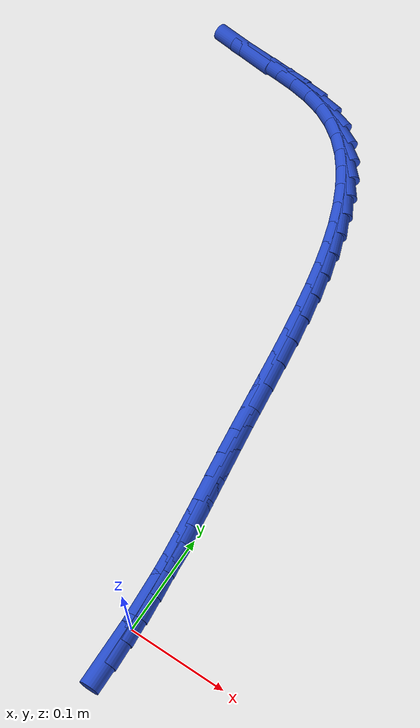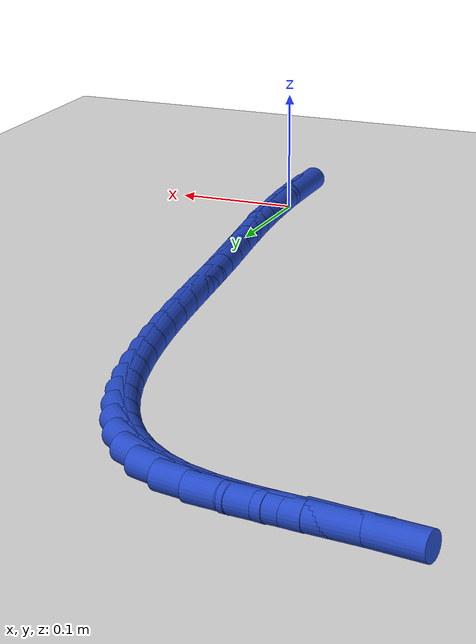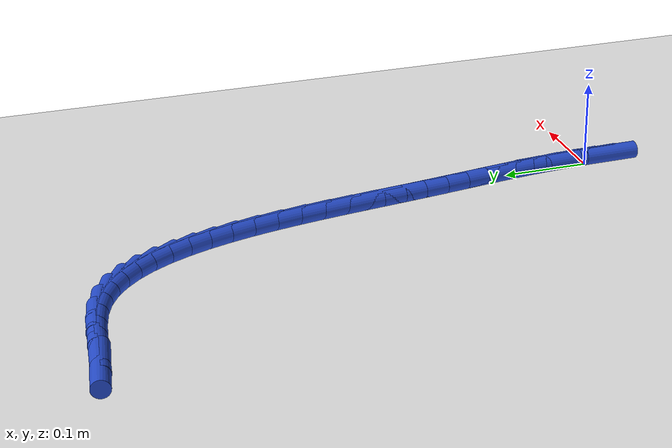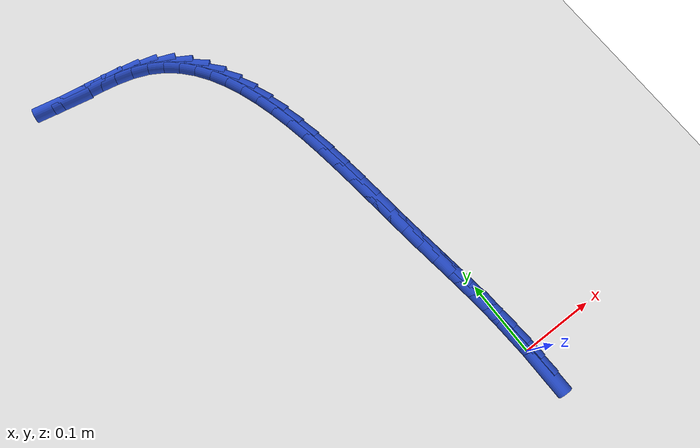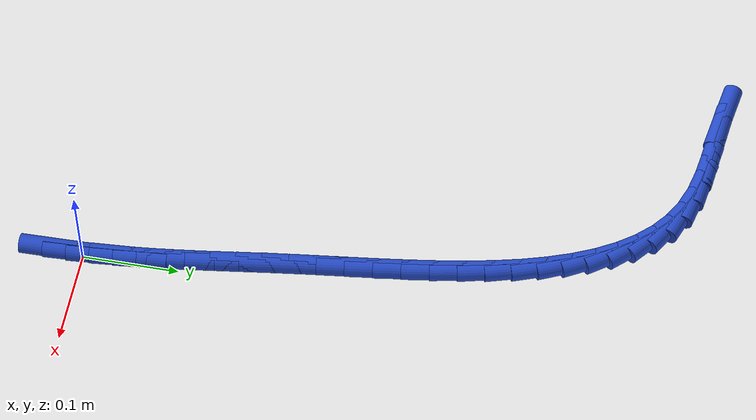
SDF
<sdf version="1.6">
 <world name="default">
  <model name="ground_plane">
   <static>1</static>
   <link name="link">
    <collision name="collision">
     <geometry><plane><normal>0 0 1</normal><size>100 100</size></plane></geometry>
     <surface><friction><ode><mu>100</mu><mu2>50</mu2></ode></friction></surface>
    </collision>
    <visual name="visual">
     <cast_shadows>0</cast_shadows>
     <geometry><plane><normal>0 0 1</normal><size>100 100</size></plane></geometry>
     <material>
      <script><uri>file://media/materials/scripts/gazebo.material</uri><name>Gazebo/WhiteGlow</name></script>
     </material>
    </visual>
   </link>
  </model>
  <model name="line">
   <link name="link_0">
    <pose>8.673617379884035e-19 -3.469446951953614e-17 0.01 0 1.57 -1.5240641853317218</pose>
    <collision name="collision">
     <geometry><cylinder><radius>0.01</radius><length>0.08</length></cylinder></geometry>
    </collision>
    <visual name="visual">
     <material>
      <script><name>Gazebo/Blue</name><uri>file://media/materials/scripts/gazebo.material</uri></script>
     </material>
     <geometry><cylinder><radius>0.01</radius><length>0.08</length></cylinder></geometry>
    </visual>
   </link>
   <link name="link_1">
    <pose>-0.0011370628850971864 0.02431378036060707 0.01 0 1.57 -1.4969305123686296</pose>
    <collision name="collision">
     <geometry><cylinder><radius>0.01</radius><length>0.08</length></cylinder></geometry>
    </collision>
    <visual name="visual">
     <material>
      <script><name>Gazebo/Blue</name><uri>file://media/materials/scripts/gazebo.material</uri></script>
     </material>
     <geometry><cylinder><radius>0.01</radius><length>0.08</length></cylinder></geometry>
    </visual>
   </link>
   <link name="link_2">
    <pose>-0.002921043157018145 0.04842147544550481 0.01 0 1.57 -1.4741336956507662</pose>
    <collision name="collision">
     <geometry><cylinder><radius>0.01</radius><length>0.08</length></cylinder></geometry>
    </collision>
    <visual name="visual">
     <material>
      <script><name>Gazebo/Blue</name><uri>file://media/materials/scripts/gazebo.material</uri></script>
     </material>
     <geometry><cylinder><radius>0.01</radius><length>0.08</length></cylinder></geometry>
    </visual>
   </link>
   <link name="link_3">
    <pose>-0.005251955962243914 0.07246022233203431 0.01 0 1.57 -1.456071559786414</pose>
    <collision name="collision">
     <geometry><cylinder><radius>0.01</radius><length>0.08</length></cylinder></geometry>
    </collision>
    <visual name="visual">
     <material>
      <script><name>Gazebo/Blue</name><uri>file://media/materials/scripts/gazebo.material</uri></script>
     </material>
     <geometry><cylinder><radius>0.01</radius><length>0.08</length></cylinder></geometry>
    </visual>
   </link>
   <link name="link_4">
    <pose>-0.008029816447255542 0.09656715809753673 0.01 0 1.57 -1.442968445503576</pose>
    <collision name="collision">
     <geometry><cylinder><radius>0.01</radius><length>0.08</length></cylinder></geometry>
    </collision>
    <visual name="visual">
     <material>
      <script><name>Gazebo/Blue</name><uri>file://media/materials/scripts/gazebo.material</uri></script>
     </material>
     <geometry><cylinder><radius>0.01</radius><length>0.08</length></cylinder></geometry>
    </visual>
   </link>
   <link name="link_5">
    <pose>-0.011154639758534073 0.12087941981935318 0.01 0 1.57 -1.4348786645264213</pose>
    <collision name="collision">
     <geometry><cylinder><radius>0.01</radius><length>0.08</length></cylinder></geometry>
    </collision>
    <visual name="visual">
     <material>
      <script><name>Gazebo/Blue</name><uri>file://media/materials/scripts/gazebo.material</uri></script>
     </material>
     <geometry><cylinder><radius>0.01</radius><length>0.08</length></cylinder></geometry>
    </visual>
   </link>
   <link name="link_6">
    <pose>-0.014526441042560555 0.14553414457482483 0.01 0 1.57 -1.4317008175939747</pose>
    <collision name="collision">
     <geometry><cylinder><radius>0.01</radius><length>0.08</length></cylinder></geometry>
    </collision>
    <visual name="visual">
     <material>
      <script><name>Gazebo/Blue</name><uri>file://media/materials/scripts/gazebo.material</uri></script>
     </material>
     <geometry><cylinder><radius>0.01</radius><length>0.08</length></cylinder></geometry>
    </visual>
   </link>
   <link name="link_7">
    <pose>-0.01804523544581602 0.17066846944129266 0.01 0 1.57 -1.433199264471176</pose>
    <collision name="collision">
     <geometry><cylinder><radius>0.01</radius><length>0.08</length></cylinder></geometry>
    </collision>
    <visual name="visual">
     <material>
      <script><name>Gazebo/Blue</name><uri>file://media/materials/scripts/gazebo.material</uri></script>
     </material>
     <geometry><cylinder><radius>0.01</radius><length>0.08</length></cylinder></geometry>
    </visual>
   </link>
   <link name="link_8">
    <pose>-0.02161103811478153 0.19641953149609803 0.01 0 1.57 -1.4390294683640523</pose>
    <collision name="collision">
     <geometry><cylinder><radius>0.01</radius><length>0.08</length></cylinder></geometry>
    </collision>
    <visual name="visual">
     <material>
      <script><name>Gazebo/Blue</name><uri>file://media/materials/scripts/gazebo.material</uri></script>
     </material>
     <geometry><cylinder><radius>0.01</radius><length>0.08</length></cylinder></geometry>
    </visual>
   </link>
   <link name="link_9">
    <pose>-0.02512386433749043 0.2229244676020097 0.01 0 1.57 -1.4468864666676833</pose>
    <collision name="collision">
     <geometry><cylinder><radius>0.01</radius><length>0.08</length></cylinder></geometry>
    </collision>
    <visual name="visual">
     <material>
      <script><name>Gazebo/Blue</name><uri>file://media/materials/scripts/gazebo.material</uri></script>
     </material>
     <geometry><cylinder><radius>0.01</radius><length>0.08</length></cylinder></geometry>
    </visual>
   </link>
   <link name="link_10">
    <pose>-0.028527676028604204 0.25025379809651976 0.01 0 1.57 -1.4495886288142459</pose>
    <collision name="collision">
     <geometry><cylinder><radius>0.01</radius><length>0.08</length></cylinder></geometry>
    </collision>
    <visual name="visual">
     <material>
      <script><name>Gazebo/Blue</name><uri>file://media/materials/scripts/gazebo.material</uri></script>
     </material>
     <geometry><cylinder><radius>0.01</radius><length>0.08</length></cylinder></geometry>
    </visual>
   </link>
   <link name="link_11">
    <pose>-0.03193449382158683 0.27822329138851665 0.01 0 1.57 -1.4458705437820714</pose>
    <collision name="collision">
     <geometry><cylinder><radius>0.01</radius><length>0.08</length></cylinder></geometry>
    </collision>
    <visual name="visual">
     <material>
      <script><name>Gazebo/Blue</name><uri>file://media/materials/scripts/gazebo.material</uri></script>
     </material>
     <geometry><cylinder><radius>0.01</radius><length>0.08</length></cylinder></geometry>
    </visual>
   </link>
   <link name="link_12">
    <pose>-0.03549650529441764 0.30658782879543484 0.01 0 1.57 -1.4359208763719873</pose>
    <collision name="collision">
     <geometry><cylinder><radius>0.01</radius><length>0.08</length></cylinder></geometry>
    </collision>
    <visual name="visual">
     <material>
      <script><name>Gazebo/Blue</name><uri>file://media/materials/scripts/gazebo.material</uri></script>
     </material>
     <geometry><cylinder><radius>0.01</radius><length>0.08</length></cylinder></geometry>
    </visual>
   </link>
   <link name="link_13">
    <pose>-0.03936589802507603 0.33510229163470856 0.01 0 1.57 -1.4196334460924684</pose>
    <collision name="collision">
     <geometry><cylinder><radius>0.01</radius><length>0.08</length></cylinder></geometry>
    </collision>
    <visual name="visual">
     <material>
      <script><name>Gazebo/Blue</name><uri>file://media/materials/scripts/gazebo.material</uri></script>
     </material>
     <geometry><cylinder><radius>0.01</radius><length>0.08</length></cylinder></geometry>
    </visual>
   </link>
   <link name="link_14">
    <pose>-0.043694859591541325 0.3635215612237722 0.01 0 1.57 -1.3966212528681958</pose>
    <collision name="collision">
     <geometry><cylinder><radius>0.01</radius><length>0.08</length></cylinder></geometry>
    </collision>
    <visual name="visual">
     <material>
      <script><name>Gazebo/Blue</name><uri>file://media/materials/scripts/gazebo.material</uri></script>
     </material>
     <geometry><cylinder><radius>0.01</radius><length>0.08</length></cylinder></geometry>
    </visual>
   </link>
   <link name="link_15">
    <pose>-0.04863557757179294 0.3916005188800602 0.01 0 1.57 -1.3662082787203482</pose>
    <collision name="collision">
     <geometry><cylinder><radius>0.01</radius><length>0.08</length></cylinder></geometry>
    </collision>
    <visual name="visual">
     <material>
      <script><name>Gazebo/Blue</name><uri>file://media/materials/scripts/gazebo.material</uri></script>
     </material>
     <geometry><cylinder><radius>0.01</radius><length>0.08</length></cylinder></geometry>
    </visual>
   </link>
   <link name="link_16">
    <pose>-0.05434023954381022 0.41909404592100685 0.01 0 1.57 -1.327405013645648</pose>
    <collision name="collision">
     <geometry><cylinder><radius>0.01</radius><length>0.08</length></cylinder></geometry>
    </collision>
    <visual name="visual">
     <material>
      <script><name>Gazebo/Blue</name><uri>file://media/materials/scripts/gazebo.material</uri></script>
     </material>
     <geometry><cylinder><radius>0.01</radius><length>0.08</length></cylinder></geometry>
    </visual>
   </link>
   <link name="link_17">
    <pose>-0.06096103308557255 0.4457570236640466 0.01 0 1.57 -1.2788763596056034</pose>
    <collision name="collision">
     <geometry><cylinder><radius>0.01</radius><length>0.08</length></cylinder></geometry>
    </collision>
    <visual name="visual">
     <material>
      <script><name>Gazebo/Blue</name><uri>file://media/materials/scripts/gazebo.material</uri></script>
     </material>
     <geometry><cylinder><radius>0.01</radius><length>0.08</length></cylinder></geometry>
    </visual>
   </link>
   <link name="link_18">
    <pose>-0.06865014577505923 0.4713443334266137 0.01 0 1.57 -1.218919538011833</pose>
    <collision name="collision">
     <geometry><cylinder><radius>0.01</radius><length>0.08</length></cylinder></geometry>
    </collision>
    <visual name="visual">
     <material>
      <script><name>Gazebo/Blue</name><uri>file://media/materials/scripts/gazebo.material</uri></script>
     </material>
     <geometry><cylinder><radius>0.01</radius><length>0.08</length></cylinder></geometry>
    </visual>
   </link>
   <link name="link_19">
    <pose>-0.07755976519024974 0.4956108565261426 0.01 0 1.57 -1.1454893696384807</pose>
    <collision name="collision">
     <geometry><cylinder><radius>0.01</radius><length>0.08</length></cylinder></geometry>
    </collision>
    <visual name="visual">
     <material>
      <script><name>Gazebo/Blue</name><uri>file://media/materials/scripts/gazebo.material</uri></script>
     </material>
     <geometry><cylinder><radius>0.01</radius><length>0.08</length></cylinder></geometry>
    </visual>
   </link>
   <link name="link_20">
    <pose>-0.08784207890912335 0.5183114742800676 0.01 0 1.57 -1.0563437827675914</pose>
    <collision name="collision">
     <geometry><cylinder><radius>0.01</radius><length>0.08</length></cylinder></geometry>
    </collision>
    <visual name="visual">
     <material>
      <script><name>Gazebo/Blue</name><uri>file://media/materials/scripts/gazebo.material</uri></script>
     </material>
     <geometry><cylinder><radius>0.01</radius><length>0.08</length></cylinder></geometry>
    </visual>
   </link>
   <link name="link_21">
    <pose>-0.09964927450965946 0.5392010680058232 0.01 0 1.57 -0.949429680818018</pose>
    <collision name="collision">
     <geometry><cylinder><radius>0.01</radius><length>0.08</length></cylinder></geometry>
    </collision>
    <visual name="visual">
     <material>
      <script><name>Gazebo/Blue</name><uri>file://media/materials/scripts/gazebo.material</uri></script>
     </material>
     <geometry><cylinder><radius>0.01</radius><length>0.08</length></cylinder></geometry>
    </visual>
   </link>
   <link name="link_22">
    <pose>-0.11313353956983742 0.5580345190208432 0.01 0 1.57 -0.823647368579522</pose>
    <collision name="collision">
     <geometry><cylinder><radius>0.01</radius><length>0.08</length></cylinder></geometry>
    </collision>
    <visual name="visual">
     <material>
      <script><name>Gazebo/Blue</name><uri>file://media/materials/scripts/gazebo.material</uri></script>
     </material>
     <geometry><cylinder><radius>0.01</radius><length>0.08</length></cylinder></geometry>
    </visual>
   </link>
   <link name="link_23">
    <pose>-0.12844706166763664 0.5745667086425627 0.01 0 1.57 -0.6800013277637227</pose>
    <collision name="collision">
     <geometry><cylinder><radius>0.01</radius><length>0.08</length></cylinder></geometry>
    </collision>
    <visual name="visual">
     <material>
      <script><name>Gazebo/Blue</name><uri>file://media/materials/scripts/gazebo.material</uri></script>
     </material>
     <geometry><cylinder><radius>0.01</radius><length>0.08</length></cylinder></geometry>
    </visual>
   </link>
   <link name="link_24">
    <pose>-0.14574202838103645 0.5885525181884157 0.01 0 1.57 -0.5227183362739126</pose>
    <collision name="collision">
     <geometry><cylinder><radius>0.01</radius><length>0.08</length></cylinder></geometry>
    </collision>
    <visual name="visual">
     <material>
      <script><name>Gazebo/Blue</name><uri>file://media/materials/scripts/gazebo.material</uri></script>
     </material>
     <geometry><cylinder><radius>0.01</radius><length>0.08</length></cylinder></geometry>
    </visual>
   </link>
   <link name="link_25">
    <pose>-0.16517062728801626 0.5997468289758368 0.01 0 1.57 -0.3618012500604357</pose>
    <collision name="collision">
     <geometry><cylinder><radius>0.01</radius><length>0.08</length></cylinder></geometry>
    </collision>
    <visual name="visual">
     <material>
      <script><name>Gazebo/Blue</name><uri>file://media/materials/scripts/gazebo.material</uri></script>
     </material>
     <geometry><cylinder><radius>0.01</radius><length>0.08</length></cylinder></geometry>
    </visual>
   </link>
   <link name="link_26">
    <pose>-0.18685274004629196 0.6079526565183013 0.01 0 1.57 -0.23480176617950946</pose>
    <collision name="collision">
     <geometry><cylinder><radius>0.01</radius><length>0.08</length></cylinder></geometry>
    </collision>
    <visual name="visual">
     <material>
      <script><name>Gazebo/Blue</name><uri>file://media/materials/scripts/gazebo.material</uri></script>
     </material>
     <geometry><cylinder><radius>0.01</radius><length>0.08</length></cylinder></geometry>
    </visual>
   </link>
   <link name="link_27">
    <pose>-0.21048373252312055 0.6136055235017792 0.01 0 1.57 -0.15806391099328396</pose>
    <collision name="collision">
     <geometry><cylinder><radius>0.01</radius><length>0.08</length></cylinder></geometry>
    </collision>
    <visual name="visual">
     <material>
      <script><name>Gazebo/Blue</name><uri>file://media/materials/scripts/gazebo.material</uri></script>
     </material>
     <geometry><cylinder><radius>0.01</radius><length>0.08</length></cylinder></geometry>
    </visual>
   </link>
   <link name="link_28">
    <pose>-0.2354598932101858 0.6175865628567427 0.01 0 1.57 -0.1238086833445902</pose>
    <collision name="collision">
     <geometry><cylinder><radius>0.01</radius><length>0.08</length></cylinder></geometry>
    </collision>
    <visual name="visual">
     <material>
      <script><name>Gazebo/Blue</name><uri>file://media/materials/scripts/gazebo.material</uri></script>
     </material>
     <geometry><cylinder><radius>0.01</radius><length>0.08</length></cylinder></geometry>
    </visual>
   </link>
   <link name="link_29">
    <pose>-0.261171261112879 0.6207862189338571 0.01 0 1.57 -0.12736983379874356</pose>
    <collision name="collision">
     <geometry><cylinder><radius>0.01</radius><length>0.08</length></cylinder></geometry>
    </collision>
    <visual name="visual">
     <material>
      <script><name>Gazebo/Blue</name><uri>file://media/materials/scripts/gazebo.material</uri></script>
     </material>
     <geometry><cylinder><radius>0.01</radius><length>0.08</length></cylinder></geometry>
    </visual>
   </link>
   <link name="link_30">
    <pose>-0.28700787523659194 0.6240949360837877 0.01 0 1.57 -0.16832880544252976</pose>
    <collision name="collision">
     <geometry><cylinder><radius>0.01</radius><length>0.08</length></cylinder></geometry>
    </collision>
    <visual name="visual">
     <material>
      <script><name>Gazebo/Blue</name><uri>file://media/materials/scripts/gazebo.material</uri></script>
     </material>
     <geometry><cylinder><radius>0.01</radius><length>0.08</length></cylinder></geometry>
    </visual>
   </link>
   <link name="link_279">
    <pose>0.0004041585210576783 -0.024618803275040048 0.01 0 1.57 -1.554381141434342</pose>
    <collision name="collision">
     <geometry><cylinder><radius>0.01</radius><length>0.08</length></cylinder></geometry>
    </collision>
    <visual name="visual">
     <material>
      <script><name>Gazebo/Blue</name><uri>file://media/materials/scripts/gazebo.material</uri></script>
     </material>
     <geometry><cylinder><radius>0.01</radius><length>0.08</length></cylinder></geometry>
    </visual>
   </link>
   <link name="link_280">
    <pose>-1.734723475976807e-18 -1.6653345369377348e-16 0.01 0 1.57 -1.5234154102383761</pose>
    <collision name="collision">
     <geometry><cylinder><radius>0.01</radius><length>0.08</length></cylinder></geometry>
    </collision>
    <visual name="visual">
     <material>
      <script><name>Gazebo/Blue</name><uri>file://media/materials/scripts/gazebo.material</uri></script>
     </material>
     <geometry><cylinder><radius>0.01</radius><length>0.08</length></cylinder></geometry>
    </visual>
   </link>
   <link name="link_281">
    <pose>-0.0011510607614004008 0.024275580921989254 0.01 0 1.57 -1.4920191799446654</pose>
    <collision name="collision">
     <geometry><cylinder><radius>0.01</radius><length>0.08</length></cylinder></geometry>
    </collision>
    <visual name="visual">
     <material>
      <script><name>Gazebo/Blue</name><uri>file://media/materials/scripts/gazebo.material</uri></script>
     </material>
     <geometry><cylinder><radius>0.01</radius><length>0.08</length></cylinder></geometry>
    </visual>
   </link>
   <link name="link_282">
    <pose>-0.003033026167443894 0.0481158799365638 0.01 0 1.57 -1.5078437535874554</pose>
    <collision name="collision">
     <geometry><cylinder><radius>0.01</radius><length>0.08</length></cylinder></geometry>
    </collision>
    <visual name="visual">
     <material>
      <script><name>Gazebo/Blue</name><uri>file://media/materials/scripts/gazebo.material</uri></script>
     </material>
     <geometry><cylinder><radius>0.01</radius><length>0.08</length></cylinder></geometry>
    </visual>
   </link>
  </model>
 </world>
</sdf>
